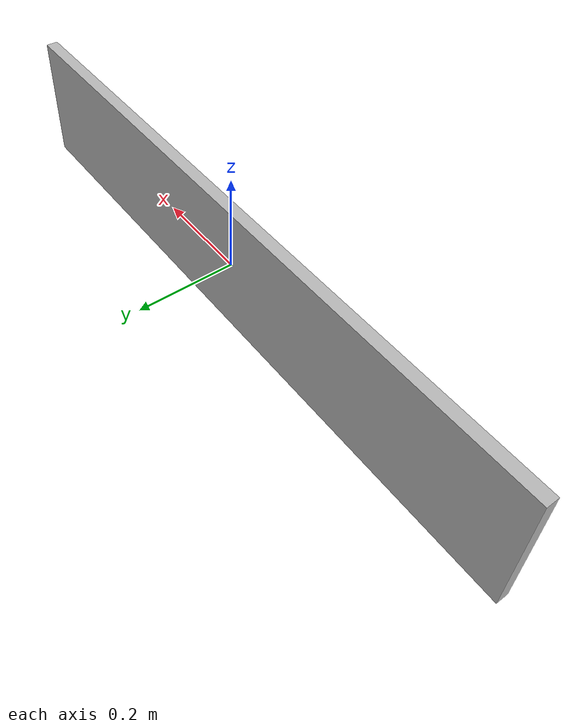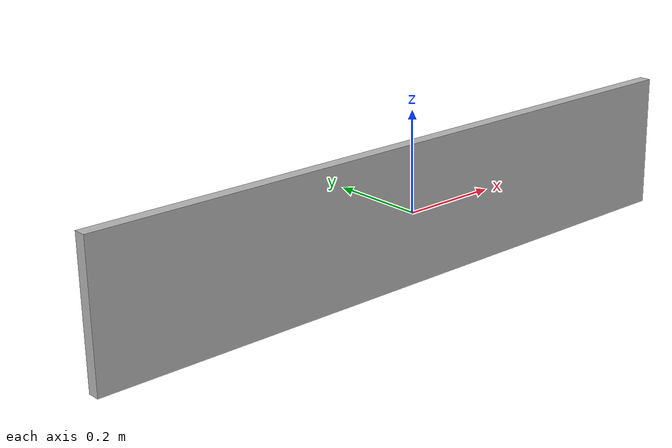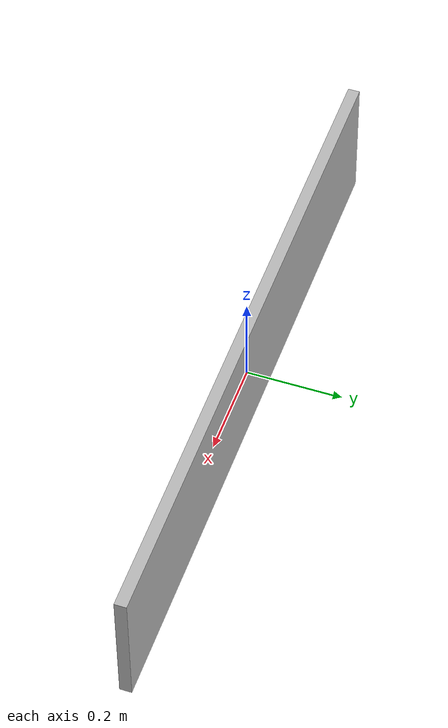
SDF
<sdf version="1.6"><model name="conveyor_fault_marker"><static>true</static><link name="label"><visual name="label"><geometry><box><size>1.4 .025 .28</size></box></geometry><material><script><uri>model://conveyor_fault_marker/materials/scripts</uri><uri>model://conveyor_fault_marker/materials/textures</uri><name>CAIS/ConveyorBreakdown</name></script></material></visual></link></model></sdf>
